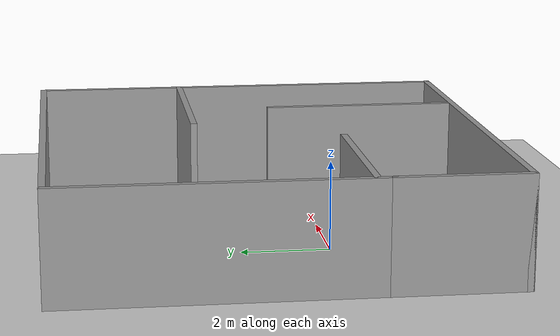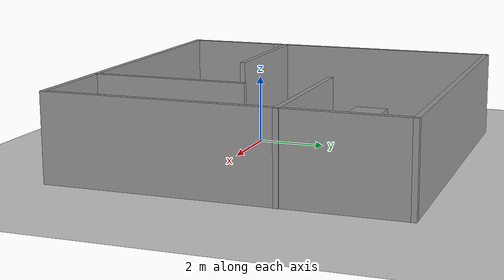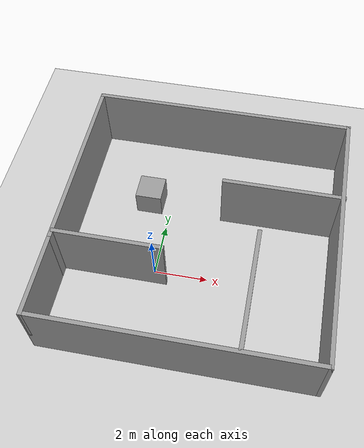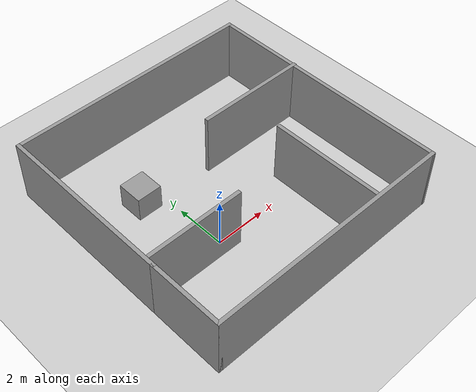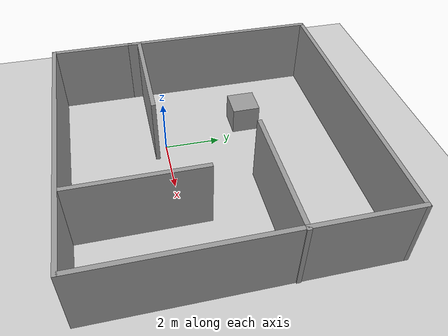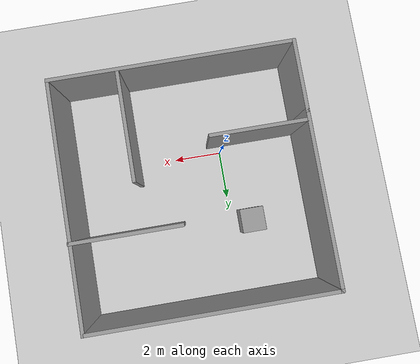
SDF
<sdf version="1.7">
 <world name="default">
  <light name="sun" type="directional">
   <pose>0 0 10 0 -0 0</pose>
   <diffuse>0.8 0.8 0.8 1</diffuse>
   <specular>0.2 0.2 0.2 1</specular>
   <attenuation>
    <range>1000</range>
    <constant>0.9</constant>
    <linear>0.01</linear>
    <quadratic>0.001</quadratic>
   </attenuation>
   <direction>-0.5 0.1 -0.9</direction>
   <spot><inner_angle>0</inner_angle><outer_angle>0</outer_angle><falloff>0</falloff></spot>
  </light>
  <model name="ground_plane">
   <static>1</static>
   <link name="link">
    <collision name="collision">
     <geometry><plane><normal>0 0 1</normal><size>100 100</size></plane></geometry>
     <surface><friction><ode><mu>100</mu><mu2>50</mu2></ode></friction></surface>
    </collision>
    <visual name="visual">
     <cast_shadows>0</cast_shadows>
     <geometry><plane><normal>0 0 1</normal><size>100 100</size></plane></geometry>
     <material>
      <script><uri>file://media/materials/scripts/gazebo.material</uri><name>Gazebo/Grey</name></script>
     </material>
    </visual>
   </link>
  </model>
  <gravity>0 0 -9.8</gravity>
  <magnetic_field>6e-06 2.3e-05 -4.2e-05</magnetic_field>
  <atmosphere type="adiabatic"/>
  <physics type="ode">
   <max_step_size>0.001</max_step_size>
   <real_time_factor>1</real_time_factor>
   <real_time_update_rate>1000</real_time_update_rate>
  </physics>
  <scene><ambient>0.4 0.4 0.4 1</ambient><background>0.7 0.7 0.7 1</background><shadows>1</shadows></scene>
  <audio><device>default</device></audio>
  <spherical_coordinates>
   <surface_model>EARTH_WGS84</surface_model>
   <latitude_deg>0</latitude_deg>
   <longitude_deg>0</longitude_deg>
   <elevation>0</elevation>
   <heading_deg>0</heading_deg>
  </spherical_coordinates>
  <model name="room">
   <pose>1.52097 1.345 0 0 -0 0</pose>
   <link name="Wall_0">
    <collision name="Wall_0_Collision">
     <geometry><box><size>3 0.15 2.5</size></box></geometry>
     <pose>0 0 1.25 0 -0 0</pose>
    </collision>
    <visual name="Wall_0_Visual">
     <pose>0 0 1.25 0 -0 0</pose>
     <geometry><box><size>3 0.15 2.5</size></box></geometry>
     <material>
      <script><uri>file://media/materials/scripts/gazebo.material</uri><name>Gazebo/Grey</name></script>
      <ambient>1 1 1 1</ambient>
     </material>
     <meta><layer>0</layer></meta>
    </visual>
    <pose>-4.94097 -3.5 0 0 -0 -1.5708</pose>
   </link>
   <link name="Wall_1">
    <collision name="Wall_1_Collision">
     <geometry><box><size>10 0.15 2.5</size></box></geometry>
     <pose>0 0 1.25 0 -0 0</pose>
    </collision>
    <visual name="Wall_1_Visual">
     <pose>0 0 1.25 0 -0 0</pose>
     <geometry><box><size>10 0.15 2.5</size></box></geometry>
     <material>
      <script><uri>file://media/materials/scripts/gazebo.material</uri><name>Gazebo/Grey</name></script>
      <ambient>1 1 1 1</ambient>
     </material>
     <meta><layer>0</layer></meta>
    </visual>
    <pose>-0.015975 -4.925 0 0 -0 0</pose>
   </link>
   <link name="Wall_11">
    <collision name="Wall_11_Collision">
     <geometry><box><size>7.15 0.15 2.5</size></box></geometry>
     <pose>0 0 1.25 0 -0 0</pose>
    </collision>
    <visual name="Wall_11_Visual">
     <pose>0 0 1.25 0 -0 0</pose>
     <geometry><box><size>7.15 0.15 2.5</size></box></geometry>
     <material>
      <script><uri>file://media/materials/scripts/gazebo.material</uri><name>Gazebo/Grey</name></script>
      <ambient>1 1 1 1</ambient>
     </material>
     <meta><layer>0</layer></meta>
    </visual>
    <pose>-4.94097 1.425 0 0 -0 1.5708</pose>
   </link>
   <link name="Wall_13">
    <collision name="Wall_13_Collision">
     <geometry><box><size>4 0.15 2.5</size></box></geometry>
     <pose>0 0 1.25 0 -0 0</pose>
    </collision>
    <visual name="Wall_13_Visual">
     <pose>0 0 1.25 0 -0 0</pose>
     <geometry><box><size>4 0.15 2.5</size></box></geometry>
     <material>
      <script><uri>file://media/materials/scripts/gazebo.material</uri><name>Gazebo/Grey</name></script>
      <ambient>1 1 1 1</ambient>
     </material>
     <meta><layer>0</layer></meta>
    </visual>
    <pose>-2.9761 -1.71793 0 0 -0 0</pose>
   </link>
   <link name="Wall_15">
    <collision name="Wall_15_Collision">
     <geometry><box><size>4.5 0.15 2.5</size></box></geometry>
     <pose>0 0 1.25 0 -0 0</pose>
    </collision>
    <visual name="Wall_15_Visual">
     <pose>0 0 1.25 0 -0 0</pose>
     <geometry><box><size>4.5 0.15 2.5</size></box></geometry>
     <material>
      <script><uri>file://media/materials/scripts/gazebo.material</uri><name>Gazebo/Grey</name></script>
      <ambient>1 1 1 1</ambient>
     </material>
     <meta><layer>0</layer></meta>
    </visual>
    <pose>2.76598 1.5007 0 0 -0 3.14159</pose>
   </link>
   <link name="Wall_17">
    <collision name="Wall_17_Collision">
     <geometry><box><size>4.5 0.15 2.5</size></box></geometry>
     <pose>0 0 1.25 0 -0 0</pose>
    </collision>
    <visual name="Wall_17_Visual">
     <pose>0 0 1.25 0 -0 0</pose>
     <geometry><box><size>4.5 0.15 2.5</size></box></geometry>
     <material>
      <script><uri>file://media/materials/scripts/gazebo.material</uri><name>Gazebo/Grey</name></script>
      <ambient>1 1 1 1</ambient>
     </material>
     <meta><layer>0</layer></meta>
    </visual>
    <pose>2.14795 -2.65515 0 0 -0 1.5708</pose>
   </link>
   <link name="Wall_5">
    <collision name="Wall_5_Collision">
     <geometry><box><size>10 0.15 2.5</size></box></geometry>
     <pose>0 0 1.25 0 -0 0</pose>
    </collision>
    <visual name="Wall_5_Visual">
     <pose>0 0 1.25 0 -0 0</pose>
     <geometry><box><size>10 0.15 2.5</size></box></geometry>
     <material>
      <script><uri>file://media/materials/scripts/gazebo.material</uri><name>Gazebo/Grey</name></script>
      <ambient>1 1 1 1</ambient>
     </material>
     <meta><layer>0</layer></meta>
    </visual>
    <pose>4.90902 0 0 0 -0 1.5708</pose>
   </link>
   <link name="Wall_9">
    <collision name="Wall_9_Collision">
     <geometry><box><size>10 0.15 2.5</size></box></geometry>
     <pose>0 0 1.25 0 -0 0</pose>
    </collision>
    <visual name="Wall_9_Visual">
     <pose>0 0 1.25 0 -0 0</pose>
     <geometry><box><size>10 0.15 2.5</size></box></geometry>
     <material>
      <script><uri>file://media/materials/scripts/gazebo.material</uri><name>Gazebo/Grey</name></script>
      <ambient>1 1 1 1</ambient>
     </material>
     <meta><layer>0</layer></meta>
    </visual>
    <pose>-0.015975 4.925 0 0 -0 3.14159</pose>
   </link>
   <static>1</static>
  </model>
  <model name="unit_box">
   <pose>-0.816758 3.15376 0.5 0 -0 0</pose>
   <link name="link">
    <inertial>
     <mass>1</mass>
     <inertia>
      <ixx>0.166667</ixx>
      <ixy>0</ixy>
      <ixz>0</ixz>
      <iyy>0.166667</iyy>
      <iyz>0</iyz>
      <izz>0.166667</izz>
     </inertia>
    </inertial>
    <collision name="collision"><geometry><box><size>1 1 1</size></box></geometry></collision>
    <visual name="visual">
     <geometry><box><size>1 1 1</size></box></geometry>
     <material>
      <script><name>Gazebo/Grey</name><uri>file://media/materials/scripts/gazebo.material</uri></script>
     </material>
    </visual>
   </link>
  </model>
 </world>
</sdf>
